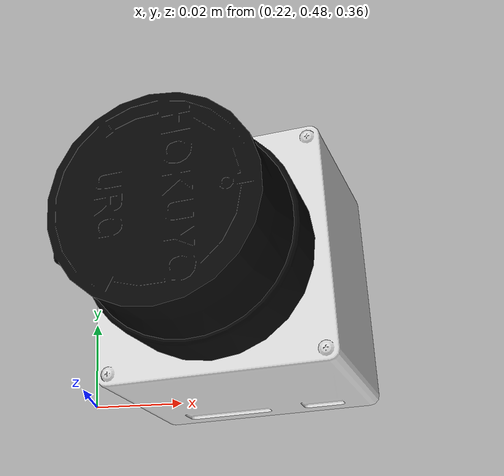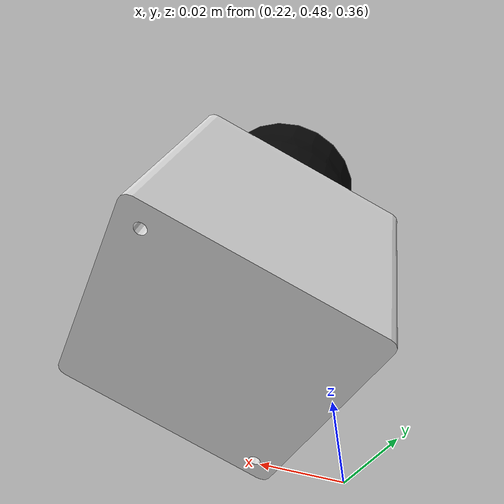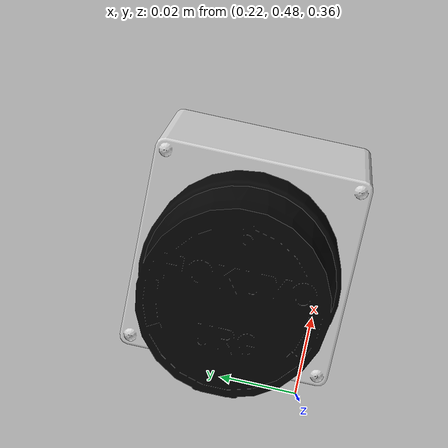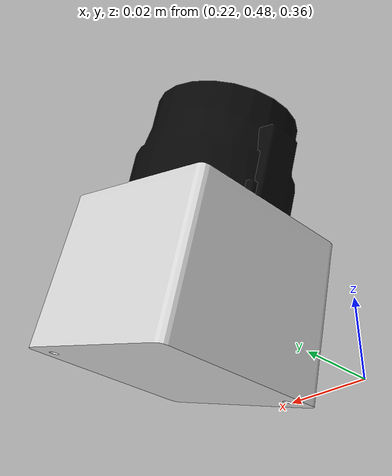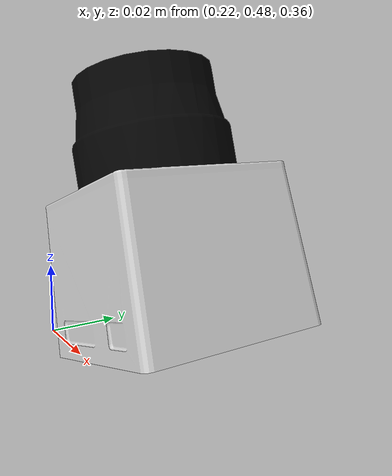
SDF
<?xml version='1.0'?>
<sdf version='1.6'>
  <model name="laser">

	<link name='hokuyo_link'>
         <pose frame=''>0.25 0.5 0.40 0 -0.3 -0</pose>
         <inertial>
         	<mass>0.1</mass>
         </inertial>
      <collision name='collision'>
        <geometry>
          <box>
            <size>0.1 0.1 0.1</size>
          </box>
        </geometry>
      </collision>
      <visual name='visual'>
        <geometry>
          <mesh>
            <uri>model://hokuyo/meshes/hokuyo.dae</uri>
          </mesh>
        </geometry>
      </visual>
       <sensor type="ray" name="head_hokuyo_sensor">
			<pose>0 0 0 0 0 0</pose>
			<visualize>true</visualize>
			<update_rate>30</update_rate>
			<ray>
				<scan>
					<horizontal>
						<samples>360</samples>
						<resolution>1</resolution>
						<min_angle>-3.14</min_angle>
						<max_angle>3.14</max_angle>
					</horizontal>
				</scan>
				<range>
					<min>0.10</min>
					<max>10.0</max>
					<resolution>0.01</resolution>
				</range>
				<noise>
					<type>gaussian</type>
					<mean>0.0</mean>
					<stddev>0.01</stddev>
				</noise>
			</ray>
			<plugin name="gazebo_ros_head_hokuyo_controller" filename="libgazebo_ros_laser.so">
				<topicName>/scan</topicName>
				<frameName>hokuyo_link</frameName>
			</plugin>
		</sensor>
             </link>

       <joint type="fixed" name="hokuyo_joint">
         <pose>0.15 0 0.3 0 0 0</pose>
         <child>hokuyo_link</child>
         <parent>chassis</parent>
        <axis>
        <xyz>0 1 0</xyz>
      </axis>
     </joint>

   </model>
</sdf>
